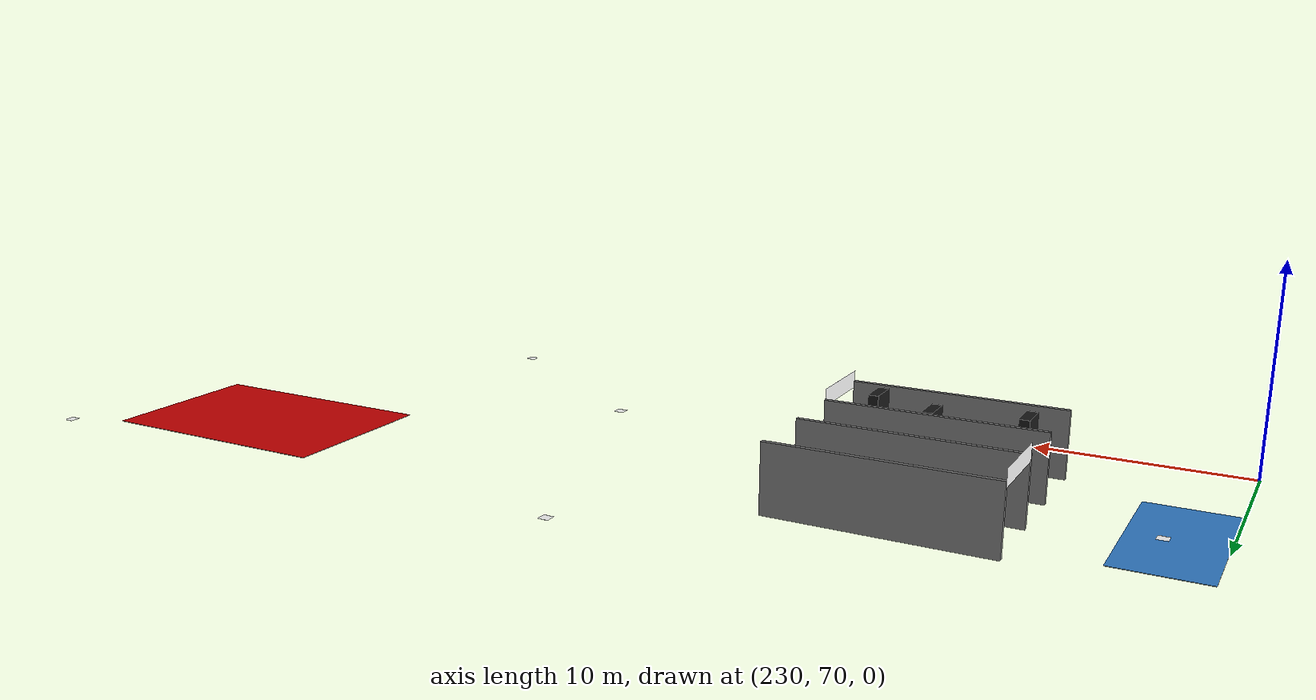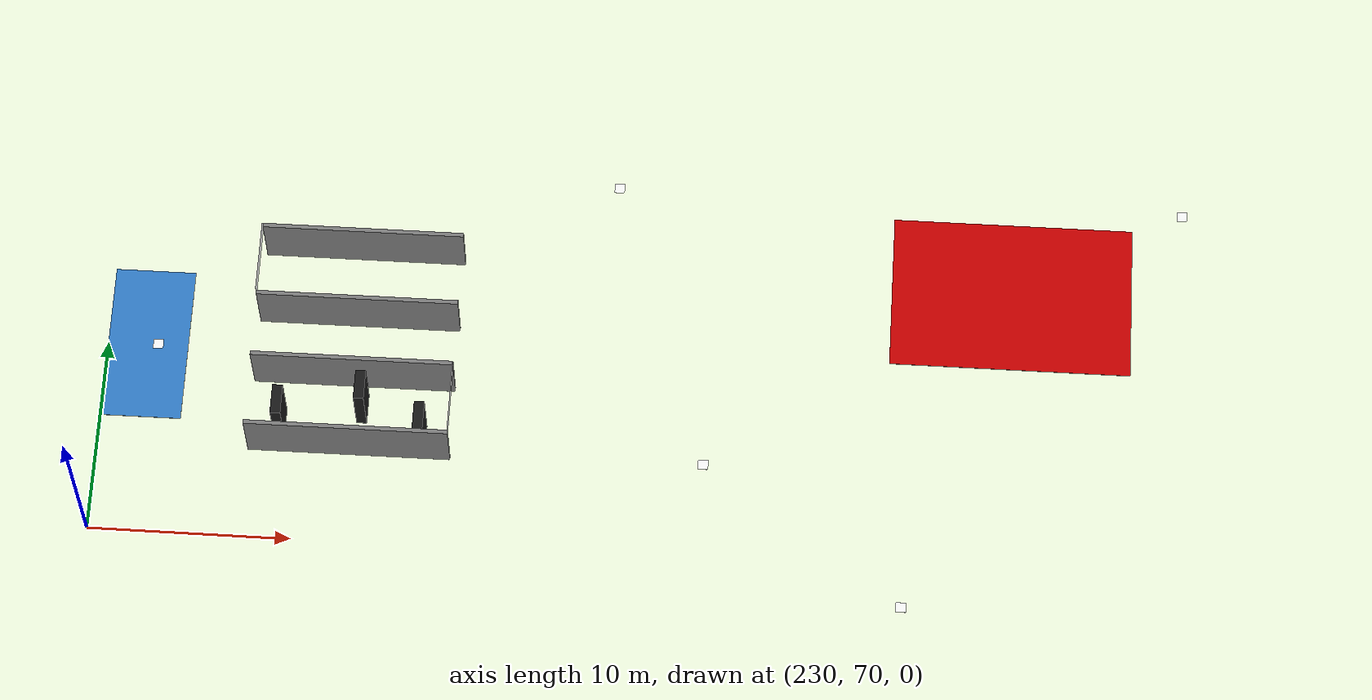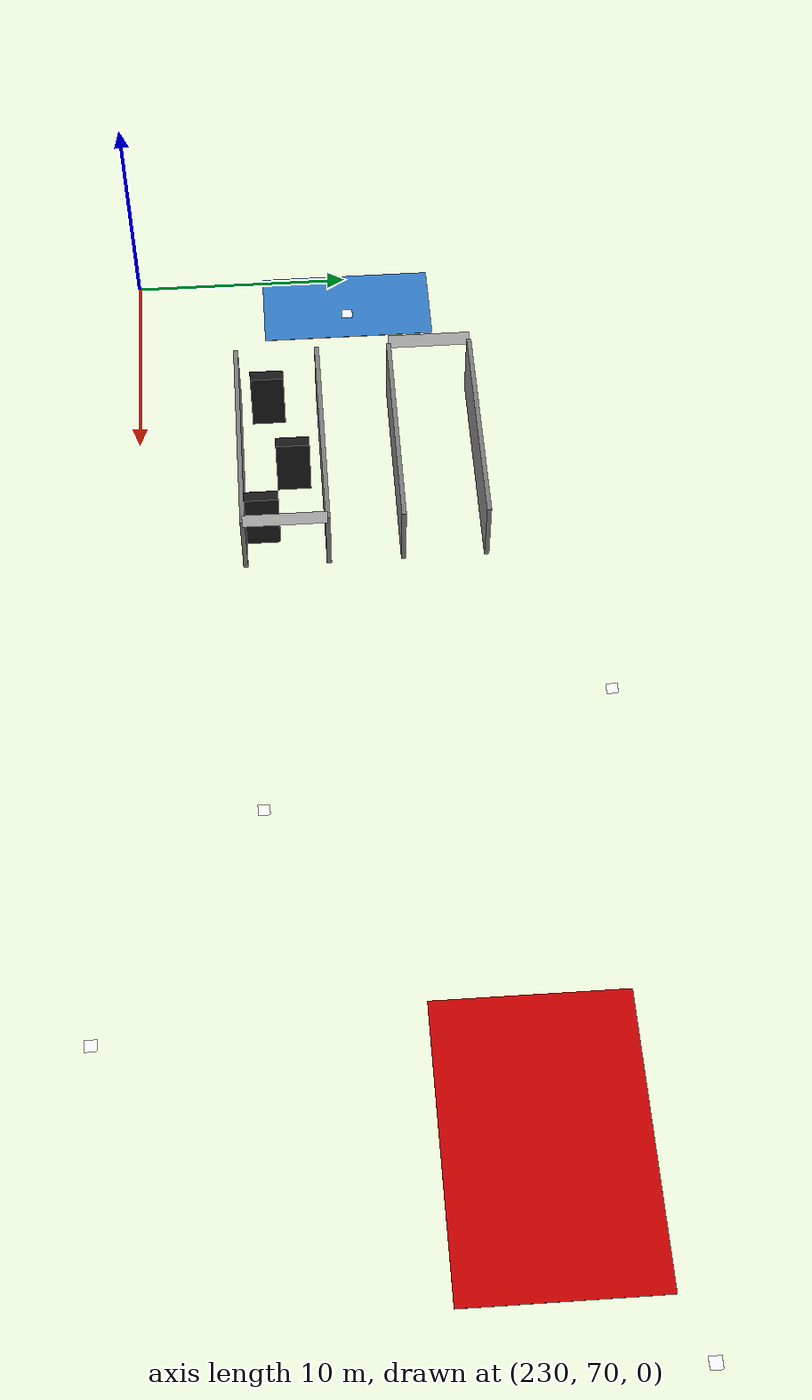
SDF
<sdf version="1.10">
 <world name="mission2">
  <plugin filename="gz-sim-physics-system" name="gz::sim::systems::Physics"/>
  <plugin filename="gz-sim-user-commands-system" name="gz::sim::systems::UserCommands"/>
  <plugin filename="gz-sim-scene-broadcaster-system" name="gz::sim::systems::SceneBroadcaster"/>
  <plugin filename="gz-sim-sensors-system" name="gz::sim::systems::Sensors">
   <render_engine>ogre2</render_engine>
  </plugin>
  <plugin filename="gz-sim-imu-system" name="gz::sim::systems::Imu"/>
  <plugin filename="gz-sim-navsat-system" name="gz::sim::systems::NavSat"/>
  <plugin filename="gz-sim-magnetometer-system" name="gz::sim::systems::Magnetometer"/>
  <plugin filename="gz-sim-air-pressure-system" name="gz::sim::systems::AirPressure"/>
  <plugin filename="gz-sim-altimeter-system" name="gz::sim::systems::Altimeter"/>
  <physics type="ode">
   <max_step_size>0.0040000000000000001</max_step_size>
   <real_time_factor>1</real_time_factor>
   <real_time_update_rate>250</real_time_update_rate>
  </physics>
  <gravity>0 0 -9.8000000000000007</gravity>
  <atmosphere type="adiabatic"/>
  <scene>
   <ambient>0.200000003 0.200000003 0.300000012 1</ambient>
   <background>0.100000001 0.100000001 0.100000001 1</background>
   <shadows>true</shadows>
   <grid>false</grid>
   <sky>
    <clouds>
     <speed>12</speed>
     <humidity>0.80000000000000004</humidity>
     <mean_size>0.5</mean_size>
     <ambient>0.100000001 0.100000001 0.100000001 1</ambient>
    </clouds>
   </sky>
   <fog>
    <color>0.150000006 0.159999996 0.180000007 1</color>
    <type>linear</type>
    <start>10</start>
    <end>200</end>
   </fog>
  </scene>
  <spherical_coordinates>
   <surface_model>EARTH_WGS84</surface_model>
   <world_frame_orientation>ENU</world_frame_orientation>
   <latitude_deg>37.412173000000003</latitude_deg>
   <longitude_deg>-121.998878</longitude_deg>
   <elevation>38</elevation>
   <heading_deg>0</heading_deg>
  </spherical_coordinates>
  <magnetic_field>5.5644999999999998e-06 2.2875799999999999e-05 -4.2388400000000002e-05</magnetic_field>
  <model name="takeoff_zone">
   <static>true</static>
   <pose>232 80 0.236900000000 0 0 0</pose>
   <link name="link">
    <visual name="visual">
     <geometry><box><size>4 8 0.02</size></box></geometry>
     <material>
      <ambient>0.200000003 0.5 0.800000012 1</ambient>
      <diffuse>0.200000003 0.5 0.800000012 1</diffuse>
     </material>
    </visual>
    <inertial>
     <mass>1</mass>
     <inertia><ixx>1</ixx><ixy>0</ixy><ixz>0</ixz><iyy>1</iyy><iyz>0</iyz><izz>1</izz></inertia>
    </inertial>
   </link>
  </model>
  <model name="forward_wall_left">
   <static>true</static>
   <pose>242.5 85.349999999999994 1.8200000000000001 0 0 0</pose>
   <link name="link">
    <collision name="collision">
     <geometry><box><size>10 0.20000000000000001 3.2000000000000002</size></box></geometry>
    </collision>
    <visual name="visual">
     <geometry><box><size>10 0.20000000000000001 3.2000000000000002</size></box></geometry>
     <material><ambient>0.5 0.5 0.5 1</ambient></material>
    </visual>
    <inertial>
     <mass>1</mass>
     <inertia><ixx>1</ixx><ixy>0</ixy><ixz>0</ixz><iyy>1</iyy><iyz>0</iyz><izz>1</izz></inertia>
    </inertial>
   </link>
  </model>
  <model name="forward_wall_right">
   <static>true</static>
   <pose>242.5 81.650000000000006 1.8200000000000001 0 0 0</pose>
   <link name="link">
    <collision name="collision">
     <geometry><box><size>10 0.20000000000000001 3.2000000000000002</size></box></geometry>
    </collision>
    <visual name="visual">
     <geometry><box><size>10 0.20000000000000001 3.2000000000000002</size></box></geometry>
     <material><ambient>0.5 0.5 0.5 1</ambient></material>
    </visual>
    <inertial>
     <mass>1</mass>
     <inertia><ixx>1</ixx><ixy>0</ixy><ixz>0</ixz><iyy>1</iyy><iyz>0</iyz><izz>1</izz></inertia>
    </inertial>
   </link>
  </model>
  <model name="return_wall_left">
   <static>true</static>
   <pose>242.5 78.349999999999994 1.8200000000000001 0 0 0</pose>
   <link name="link">
    <collision name="collision">
     <geometry><box><size>10 0.20000000000000001 3.2000000000000002</size></box></geometry>
    </collision>
    <visual name="visual">
     <geometry><box><size>10 0.20000000000000001 3.2000000000000002</size></box></geometry>
     <material><ambient>0.5 0.5 0.5 1</ambient></material>
    </visual>
    <inertial>
     <mass>1</mass>
     <inertia><ixx>1</ixx><ixy>0</ixy><ixz>0</ixz><iyy>1</iyy><iyz>0</iyz><izz>1</izz></inertia>
    </inertial>
   </link>
  </model>
  <model name="return_wall_right">
   <static>true</static>
   <pose>242.5 74.650000000000006 1.8200000000000001 0 0 0</pose>
   <link name="link">
    <collision name="collision">
     <geometry><box><size>10 0.20000000000000001 3.2000000000000002</size></box></geometry>
    </collision>
    <visual name="visual">
     <geometry><box><size>10 0.20000000000000001 3.2000000000000002</size></box></geometry>
     <material><ambient>0.5 0.5 0.5 1</ambient></material>
    </visual>
    <inertial>
     <mass>1</mass>
     <inertia><ixx>1</ixx><ixy>0</ixy><ixz>0</ixz><iyy>1</iyy><iyz>0</iyz><izz>1</izz></inertia>
    </inertial>
   </link>
  </model>
  <model name="obstacle_1">
   <static>true</static>
   <pose>239 76 1.8 0 0 0</pose>
   <link name="link">
    <collision name="collision"><geometry><box><size>0.5 1.5 3</size></box></geometry></collision>
    <visual name="visual">
     <geometry><box><size>0.5 1.5 3</size></box></geometry>
     <material>
      <ambient>0.100000001 0.100000001 0.100000001 1</ambient>
      <diffuse>0.100000001 0.100000001 0.100000001 1</diffuse>
     </material>
    </visual>
    <inertial>
     <mass>1</mass>
     <inertia><ixx>1</ixx><ixy>0</ixy><ixz>0</ixz><iyy>1</iyy><iyz>0</iyz><izz>1</izz></inertia>
    </inertial>
   </link>
  </model>
  <model name="obstacle_2">
   <static>true</static>
   <pose>243 77 1.8 0 0 0</pose>
   <link name="link">
    <collision name="collision"><geometry><box><size>0.5 1.5 3</size></box></geometry></collision>
    <visual name="visual">
     <geometry><box><size>0.5 1.5 3</size></box></geometry>
     <material>
      <ambient>0.100000001 0.100000001 0.100000001 1</ambient>
      <diffuse>0.100000001 0.100000001 0.100000001 1</diffuse>
     </material>
    </visual>
    <inertial>
     <mass>1</mass>
     <inertia><ixx>1</ixx><ixy>0</ixy><ixz>0</ixz><iyy>1</iyy><iyz>0</iyz><izz>1</izz></inertia>
    </inertial>
   </link>
  </model>
  <model name="obstacle_3">
   <static>true</static>
   <pose>246 75.5 1.8 0 0 0</pose>
   <link name="link">
    <collision name="collision"><geometry><box><size>0.5 1.5 3</size></box></geometry></collision>
    <visual name="visual">
     <geometry><box><size>0.5 1.5 3</size></box></geometry>
     <material>
      <ambient>0.100000001 0.100000001 0.100000001 1</ambient>
      <diffuse>0.100000001 0.100000001 0.100000001 1</diffuse>
     </material>
    </visual>
    <inertial>
     <mass>1</mass>
     <inertia><ixx>1</ixx><ixy>0</ixy><ixz>0</ixz><iyy>1</iyy><iyz>0</iyz><izz>1</izz></inertia>
    </inertial>
   </link>
  </model>
  <model name="red_zone">
   <static>true</static>
   <pose>275 85 0.22 0 0 0</pose>
   <link name="link">
    <visual name="visual">
     <geometry><box><size>12 8 0.02</size></box></geometry>
     <material><ambient>0.800000012 0 0 1</ambient><diffuse>0.800000012 0 0 1</diffuse></material>
    </visual>
    <inertial>
     <mass>1</mass>
     <inertia><ixx>1</ixx><ixy>0</ixy><ixz>0</ixz><iyy>1</iyy><iyz>0</iyz><izz>1</izz></inertia>
    </inertial>
   </link>
  </model>
  <include><uri>model://qr_code_blue</uri><name>target_blue</name><pose>255 90 0.22 0 0 0</pose></include>
  <include><uri>model://qr_code_red</uri><name>target_red</name><pose>260 75 0.22 0 0 0</pose></include>
  <include><uri>model://qr_code_green</uri><name>target_green</name><pose>270 68 0.22 0 0 0</pose></include>
  <include><uri>model://qr_code</uri><name>target_base</name><pose>283.5 90 0.22 0 0 0</pose></include>
  <include><uri>model://qr_code</uri><name>launch_qr</name><pose>232.5 80 0.247 0 0 0</pose></include>
  <include><uri>model://banner</uri><name>entry_banner</name><pose>237.5 83.5 3.5 1.5708 0 0</pose></include>
  <include>
   <uri>model://banner</uri>
   <name>exit_banner</name>
   <pose>247.5 76.5000 3.5 -1.5708 3.14159 0</pose>
  </include>
  <light name="sunUTC" type="directional">
   <pose>0 0 500 0 0 0</pose>
   <intensity>0.80000000000000004</intensity>
   <direction>0.5 0.10000000000000001 -0.20000000000000001</direction>
   <diffuse>0.600000024 0.600000024 0.699999988 1</diffuse>
   <specular>0.300000012 0.300000012 0.300000012 1</specular>
   <attenuation><range>10</range><linear>1</linear><constant>1</constant><quadratic>0</quadratic></attenuation>
   <spot><inner_angle>0</inner_angle><outer_angle>0</outer_angle><falloff>0</falloff></spot>
  </light>
  <light name="directionallight" type="directional">
   <pose>234.72505521338579 93.767583165658777 2 0 0 0</pose>
   <intensity>1</intensity>
   <direction>0 0 -1</direction>
   <diffuse>0.800000012 0.800000012 0.800000012 1</diffuse>
   <specular>0.200000003 0.200000003 0.200000003 1</specular>
   <attenuation>
    <range>1000</range>
    <linear>0.01</linear>
    <constant>0.90000000000000002</constant>
    <quadratic>0.001</quadratic>
   </attenuation>
   <spot><inner_angle>0</inner_angle><outer_angle>0</outer_angle><falloff>0</falloff></spot>
  </light>
 </world>
</sdf>

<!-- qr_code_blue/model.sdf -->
<sdf version="1.6">
  <model name="qr_code">
    <static>true</static>
    <link name="link">
      <visual name="visual">
        <geometry>
          <plane>
            <normal>0 0 1</normal>
            <size>0.5 0.5</size>
          </plane>
        </geometry>
        <material>
          <ambient>1 1 1 1</ambient>
          <diffuse>1 1 1 1</diffuse>
          <specular>1 1 1 1</specular>
          <pbr>
            <metal>
              <albedo_map>model://qr_code_blue/qrcodeblue.png</albedo_map>
            </metal>
          </pbr>
        </material>
      </visual>
    </link>
  </model>
</sdf>

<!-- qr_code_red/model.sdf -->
<sdf version="1.6">
  <model name="qr_code">
    <static>true</static>
    <link name="link">
      <visual name="visual">
        <geometry>
          <plane>
            <normal>0 0 1</normal>
            <size>0.5 0.5</size>
          </plane>
        </geometry>
        <material>
          <ambient>1 1 1 1</ambient>
          <diffuse>1 1 1 1</diffuse>
          <specular>1 1 1 1</specular>
          <pbr>
            <metal>
              <albedo_map>model://qr_code_red/qrcodered.png</albedo_map>
            </metal>
          </pbr>
        </material>
      </visual>
    </link>
  </model>
</sdf>

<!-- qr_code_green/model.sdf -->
<sdf version="1.6">
  <model name="qr_code">
    <static>true</static>
    <link name="link">
      <visual name="visual">
        <geometry>
          <plane>
            <normal>0 0 1</normal>
            <size>0.5 0.5</size>
          </plane>
        </geometry>
        <material>
          <ambient>1 1 1 1</ambient>
          <diffuse>1 1 1 1</diffuse>
          <specular>1 1 1 1</specular>
          <pbr>
            <metal>
              <albedo_map>model://qr_code_green/qrcodegreen.png</albedo_map>
            </metal>
          </pbr>
        </material>
      </visual>
    </link>
  </model>
</sdf>

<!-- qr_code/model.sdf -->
<sdf version="1.6">
  <model name="qr_code">
    <static>true</static>
    <link name="link">
      <visual name="visual">
        <geometry>
          <plane>
            <normal>0 0 1</normal>
            <size>0.5 0.5</size>
          </plane>
        </geometry>
        <material>
          <ambient>1 1 1 1</ambient>
          <diffuse>1 1 1 1</diffuse>
          <specular>1 1 1 1</specular>
          <pbr>
            <metal>
              <albedo_map>model://qr_code/qrcode.png</albedo_map>
            </metal>
          </pbr>
        </material>
      </visual>
    </link>
  </model>
</sdf>

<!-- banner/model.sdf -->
<sdf version="1.6">
  <model name="banner">
    <static>true</static>
    <link name="link">
      <visual name="visual">
        <geometry>
          <plane>
            <normal>-1 0 0</normal>
            <size>3.7 0.8</size>
          </plane>
        </geometry>
        <material>
          <ambient>1 1 1 1</ambient>
          <diffuse>1 1 1 1</diffuse>
          <specular>1 1 1 1</specular>
          <pbr>
            <metal>
              <albedo_map>model://banner/banner.png</albedo_map>
            </metal>
          </pbr>
        </material>
      </visual>
    </link>
  </model>
</sdf>
